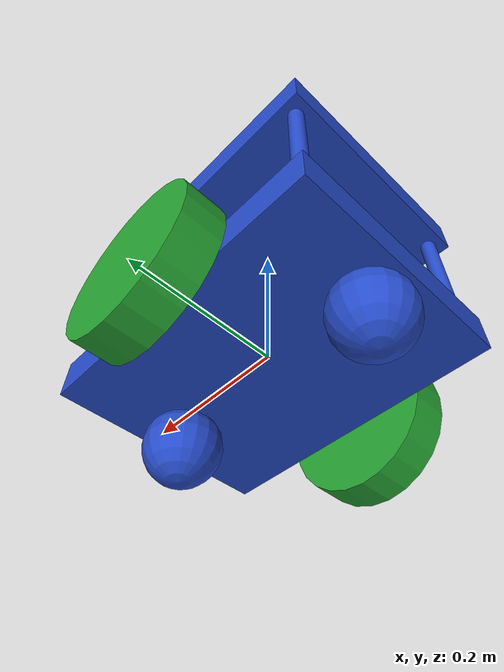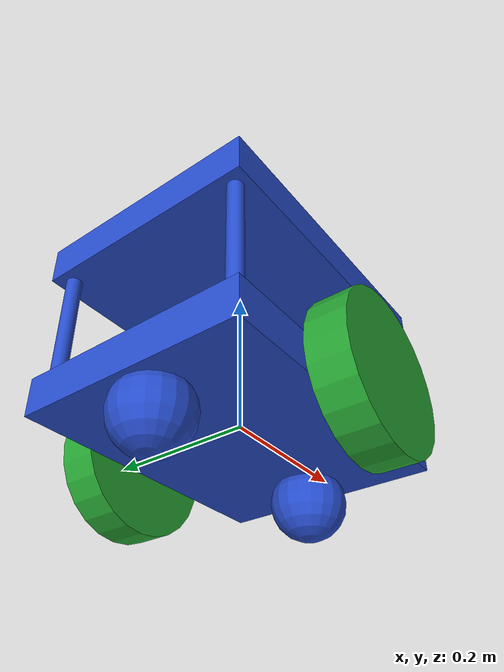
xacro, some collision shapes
<?xml version='1.0'?>

<robot name="my_robot" xmlns:xacro="http://www.ros.org/wiki/xacro">

  <xacro:include filename="$(find my_robot)/urdf/my_robot.gazebo" />

  <link name="robot_footprint"></link>

  <joint name="robot_footprint_joint" type="fixed">
    <origin xyz="0 0 0" rpy="0 0 0" />
    <parent link="robot_footprint"/>
    <child link="chassis" />
  </joint>

  <link name='chassis'>
    <pose>0 0 0.1 0 0 0</pose>

    <inertial>
      <mass value="15.0"/>
      <origin xyz="0 0 0" rpy=" 0 0 0"/>
      <inertia
          ixx="0.1" ixy="0" ixz="0"
          iyy="0.1" iyz="0"
          izz="0.1"
      />
    </inertial>

    <collision name='chassis_bottom'>
      <origin xyz="0 0 0" rpy=" 0 0 0"/>
      <geometry>
        <box size=".4 .3 .05"/>
      </geometry>
    </collision>

    <!--  name='chassis_bottom_visual' -->
    <visual>
      <origin xyz="0 0 0" rpy=" 0 0 0"/>
      <geometry>
        <box size=".4 .3 .05"/>
      </geometry>
    </visual>

    <collision name='chassis_top'>
      <origin xyz="0 0 0.2" rpy=" 0 0 0"/>
      <geometry>
        <box size=".4 .3 .05"/>
      </geometry>
    </collision>

    <!--  name='chassis_top_visual' -->
    <visual>
      <origin xyz="0 0 0.2" rpy=" 0 0 0"/>
      <geometry>
        <box size=".4 .3 .05"/>
      </geometry>
    </visual>

    <!-- Support posts -->

    <!--  name='post_FL_visual' -->
    <visual>
      <origin xyz="0.18 0.13 0.1" rpy=" 0 0 0"/>
      <geometry>
        <cylinder length="0.2" radius="0.01"/>
      </geometry>
    </visual>

    <!--  name='post_FR_visual' -->
    <visual>
      <origin xyz="0.18 -0.13 0.1" rpy=" 0 0 0"/>
      <geometry>
        <cylinder length="0.2" radius="0.01"/>
      </geometry>
    </visual>

    <!--  name='post_BL_visual' -->
    <visual>
      <origin xyz="-0.18 0.13 0.1" rpy=" 0 0 0"/>
      <geometry>
        <cylinder length="0.2" radius="0.01"/>
      </geometry>
    </visual>

    <!--  name='post_BR_visual' -->
    <visual>
      <origin xyz="-0.18 -0.13 0.1" rpy=" 0 0 0"/>
      <geometry>
        <cylinder length="0.2" radius="0.01"/>
      </geometry>
    </visual>

    <collision name='posts_collision'>
      <origin xyz="0 0 0.1" rpy=" 0 0 0"/>
      <geometry>
        <box size=".4 .3 .2"/>
      </geometry>
    </collision>

    <!-- camera mount -->

    <!--  name='camera_mount_visual' -->
    <visual>
      <origin xyz="0.17 0 0.055" rpy=" 0 0 0"/>
      <geometry>
        <box size=".01 .06 .06"/>
      </geometry>
    </visual>

    <!-- casters -->

    <collision name='back_caster_collision'>
      <origin xyz="-0.15 0 -0.05" rpy=" 0 0 0"/>
      <geometry>
        <sphere radius="0.0499"/>
      </geometry>
    </collision>

    <!--  name='back_caster_visual' -->
    <visual name='back_caster_visual'>
      <origin xyz="-0.15 0 -0.05" rpy=" 0 0 0"/>
      <geometry>
        <sphere radius="0.05"/>
      </geometry>
    </visual>

    <collision name='front_caster_collision'>
      <origin xyz="0.15 0 -0.05" rpy=" 0 0 0"/>
      <geometry>
        <sphere radius="0.0499"/>
      </geometry>
    </collision>

    <!--  name='front_caster_visual' -->
    <visual name='front_caster_visual'>
      <origin xyz="0.15 0 -0.05" rpy=" 0 0 0"/>
      <geometry>
        <sphere radius="0.05"/>
      </geometry>
    </visual>

  </link>

  <!-- wheels -->

  <link name='left_wheel'>

    <pose>0 0 0.1 0 0 0</pose>

    <inertial>
      <mass value="5.0"/>
      <origin xyz="0 0 0" rpy=" 0 1.5707 1.5707"/>
      <inertia
          ixx="0.1" ixy="0" ixz="0"
          iyy="0.1" iyz="0"
          izz="0.1"
      />
    </inertial>

    <collision name='left_wheel_collision'>
      <origin xyz="0 0 0" rpy=" 0 1.5707 1.5707"/>
      <geometry>
        <cylinder length="0.05" radius="0.1"/>
      </geometry>
    </collision>

    <visual name='left_wheel_visual'>
      <origin xyz="0 0 0" rpy=" 0 1.5707 1.5707"/>
      <geometry>
        <cylinder length="0.05" radius="0.1"/>
      </geometry>
    </visual>

  </link>

  <link name='right_wheel'>

    <pose>0 0 0.1 0 0 0</pose>

    <inertial>
      <mass value="5.0"/>
      <origin xyz="0 0 0" rpy=" 0 1.5707 1.5707"/>
      <inertia
          ixx="0.1" ixy="0" ixz="0"
          iyy="0.1" iyz="0"
          izz="0.1"
      />
    </inertial>

    <collision name='right_wheel_collision'>
      <origin xyz="0 0 0" rpy=" 0 1.5707 1.5707"/>
      <geometry>
        <cylinder length="0.05" radius="0.1"/>
      </geometry>
    </collision>

    <visual name='right_wheel_visual'>
      <origin xyz="0 0 0" rpy=" 0 1.5707 1.5707"/>
      <geometry>
        <cylinder length="0.05" radius="0.1"/>
      </geometry>
    </visual>

  </link>

 <!-- Sensors -->

  <link name='camera'>

    <inertial>
      <mass value="0.1"/>
      <origin xyz="0 0 0" rpy=" 0 0 0"/>
      <inertia
          ixx="1e-6" ixy="0" ixz="0"
          iyy="1e-6" iyz="0"
          izz="1e-6"
      />
    </inertial>

    <collision name='camera_collision'>
      <origin xyz="0 0 0" rpy=" 0 0 0"/>
      <geometry>
        <box size=".05 .05 .05"/>
      </geometry>
    </collision>

    <visual name='camera_visual'>
      <origin xyz="0 0 0" rpy=" 0 0 0"/>
      <geometry>
        <box size=".05 .05 .05"/>
      </geometry>
    </visual>

    <box_inertia sizeX="0.05" sizeY="0.05" sizeZ="0.05" mass="0.1">
      <origin xyz="0 0 0" rpy="0 0 0" />
    </box_inertia>

  </link>

  <link name='hokuyo'>

    <inertial>
      <mass value="1e-5"/>
      <origin xyz="0 0 0" rpy=" 0 0 0"/>
      <inertia
          ixx="1e-6" ixy="0" ixz="0"
          iyy="1e-6" iyz="0"
          izz="1e-6"
      />
    </inertial>

    <collision name='hokuyo_collision'>
      <origin xyz="0 0 0" rpy=" 0 0 0"/>
      <geometry>
        <box size=".1 .1 .1"/>
      </geometry>
    </collision>

    <visual name='hokuyo_visual'>
      <origin xyz="0 0 0" rpy=" 0 0 0"/>
      <geometry>
        <mesh filename="package://my_robot/meshes/hokuyo.dae"/>
      </geometry>
    </visual>

  </link>

  <link name="camera_link_optical">
  </link>

  <joint type="continuous" name="left_wheel_hinge">
    <origin xyz="0 0.18 0" rpy="0 0 0"/>
    <child link="left_wheel"/>
    <parent link="chassis"/>
    <axis xyz="0 1 0" rpy="0 0 0"/>
    <limit effort="10000" velocity="1000"/>
    <dynamics damping="1.0" friction="1.0"/>
  </joint>

  <joint type="continuous" name="right_wheel_hinge">
    <origin xyz="0 -0.18 0" rpy="0 0 0"/>
    <child link="right_wheel"/>
    <parent link="chassis"/>
    <axis xyz="0 1 0" rpy="0 0 0"/>
    <limit effort="10000" velocity="1000"/>
    <dynamics damping="1.0" friction="1.0"/>
  </joint>

  <joint type="fixed" name="hokuyo_joint">
    <origin xyz="0.15 0 0.26" rpy="0 0 0"/>
    <child link="hokuyo"/>
    <parent link="chassis"/>
    <axis xyz="0 1 0" rpy="0 0 0"/>
  </joint>

  <joint type="fixed" name="camera_joint">
    <origin xyz="0.2 0 0.055" rpy="0 0 0"/>
    <child link="camera"/>
    <parent link="chassis"/>
    <axis xyz="0 1 0" rpy="0 0 0"/>
  </joint>

  <joint name="camera_optical_joint" type="fixed">
    <origin xyz="0 0 0" rpy="-1.5707 0 -1.5707"/>
    <parent link="camera"/>
    <child link="camera_link_optical"/>
  </joint>

  <gazebo reference="left_wheel">
    <material>Gazebo/Green</material>
  </gazebo>

  <gazebo reference="right_wheel">
    <material>Gazebo/Green</material>
  </gazebo>

  <gazebo reference="chassis">
    <material>Gazebo/Blue</material>
  </gazebo>

  <gazebo reference="camera">
    <material>Gazebo/Red</material>
  </gazebo>

</robot>
